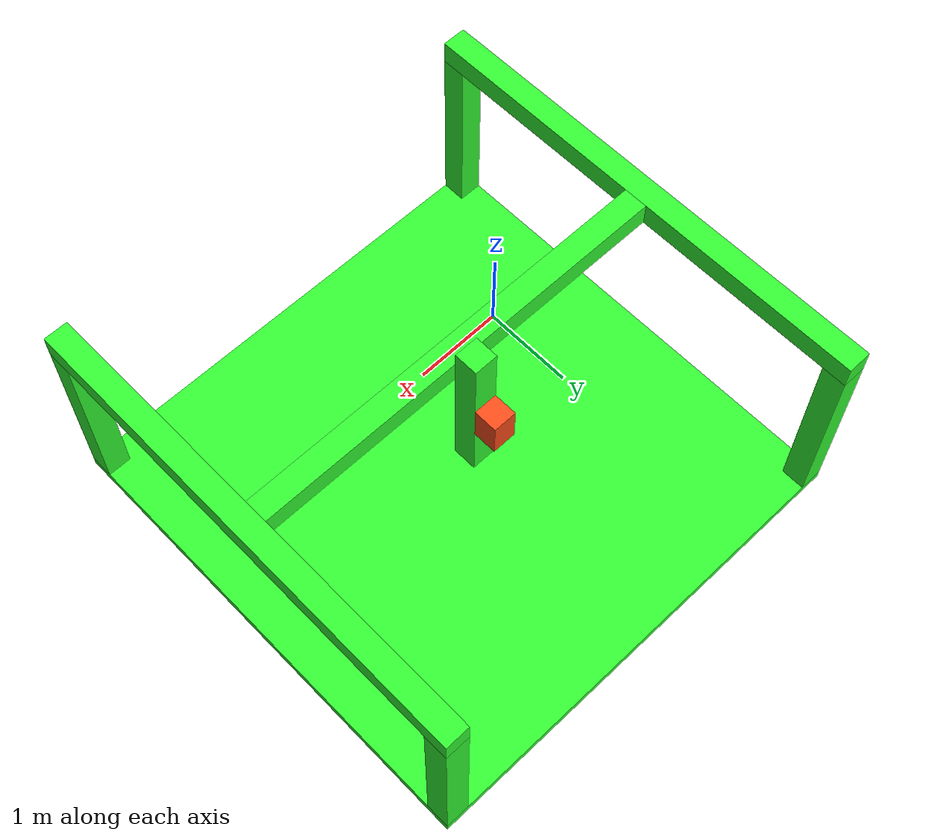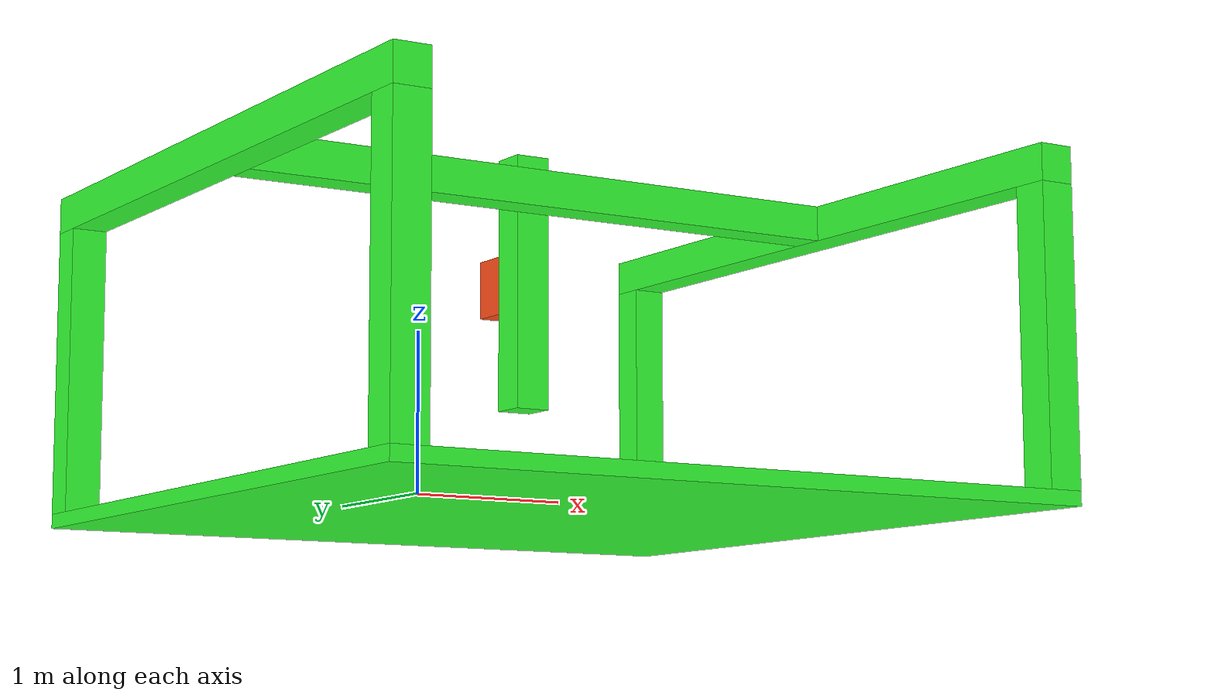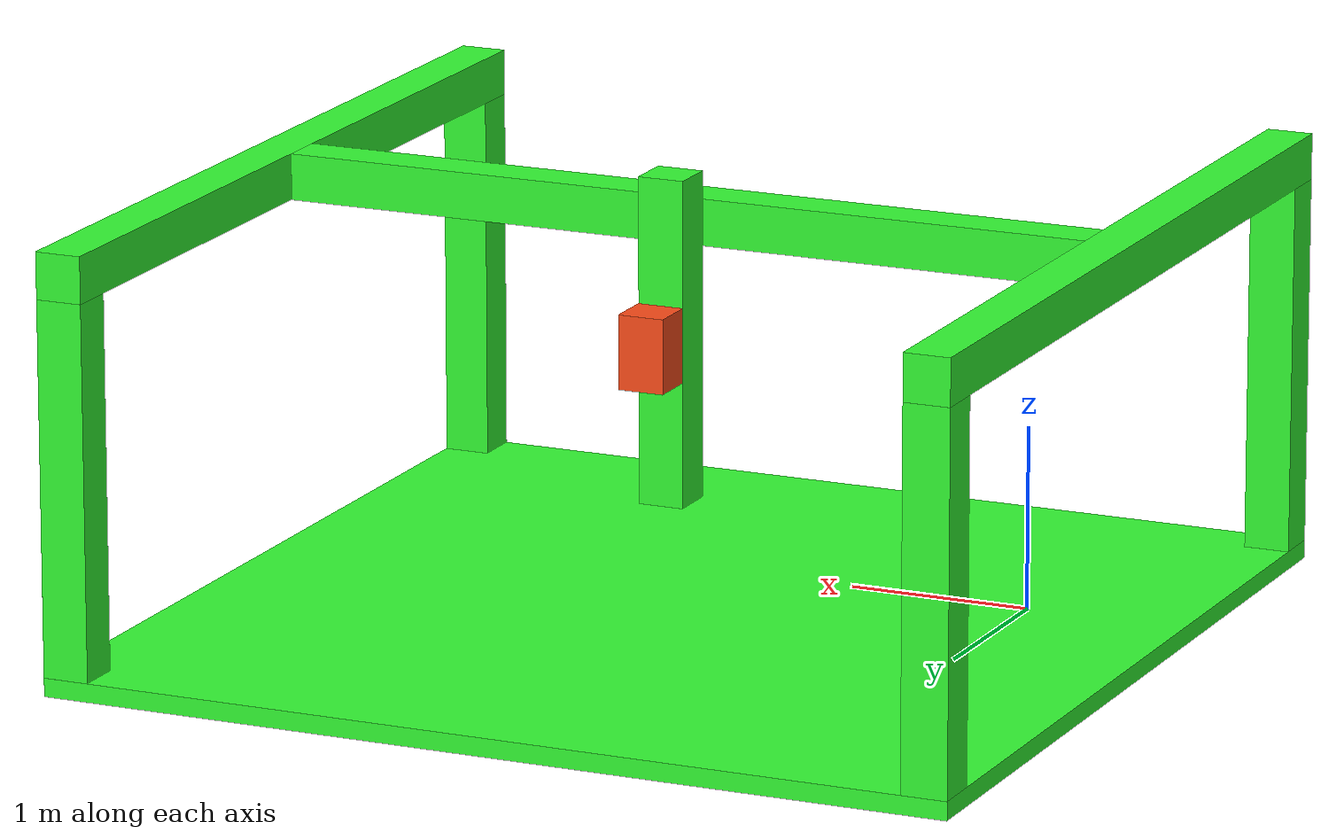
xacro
<?xml version="1.0"?>
<robot xmlns:xacro="http://www.ros.org/wiki/xacro" name="GantBot">
    <xacro:include filename="example_include.xacro" />
    <xacro:include filename="example_gazebo.xacro" />
    <link name="world"></link>
    <joint name="base_joint" type="fixed">
        <origin xyz="1.5 1.0 0" rpy="0 0 0"/>
        <parent link="world"/>
        <child link="base_link"/>
        <dynamics damping="1000000" friction="10000000"/>
    </joint>
    <link name="base_link">
        <visual>
            <origin xyz="0 0 0.05" rpy="0 0 0"/>
            <geometry>
                <box size="5 5 0.1" />
            </geometry>
            <material name="green">
                <color rgba="0.2 1 0.2 1"/>
            </material>
        </visual>
        <collision>
            <origin xyz="0 0 0.05" rpy="0 0 0"/>
            <geometry>
                <box size="5 5 0.1" />
            </geometry>
        </collision>
        <xacro:inertial_box mass="10" x="5" y="5" z="0.1">
            <origin xyz="0 0 0.05" rpy="0 0 0"/>
        </xacro:inertial_box>
    </link>

    <joint name="pilar1_joint" type="fixed">
        <origin xyz="2.375 2.375 0.1" rpy="0 0 0"/>
        <parent link="base_link"/>
        <child link="pilar1_link"/>
        <dynamics damping="1000000" friction="10000000"/>
    </joint>

    <link name="pilar1_link">
        <visual>
            <origin xyz="0 0 1" rpy="0 0 0"/>
            <geometry>
                <box size="0.25 0.25 2" />
            </geometry>
            <material name="green">
                <color rgba="0.2 1 0.2 1"/>
            </material>
        </visual>
        <collision>
            <origin xyz="0 0 1" rpy="0 0 0"/>
            <geometry>
                <box size="0.25 0.25 2" />
            </geometry>
        </collision>
        <xacro:inertial_box mass="2" x="0.5" y="0.25" z="0.15">
            <origin xyz="0 0 1" rpy="0 0 0"/>
        </xacro:inertial_box>
    </link>

    <joint name="pilar2_joint" type="fixed">
        <origin xyz="-2.375 2.375 0.1" rpy="0 0 0"/>
        <parent link="base_link"/>
        <child link="pilar2_link"/>
        <dynamics damping="1000000" friction="10000000"/>
    </joint>

    <link name="pilar2_link">
        <visual>
            <origin xyz="0 0 1" rpy="0 0 0"/>
            <geometry>
                <box size="0.25 0.25 2" />
            </geometry>
            <material name="green">
                <color rgba="0.2 1 0.2 1"/>
            </material>
        </visual>
        <collision>
            <origin xyz="0 0 1" rpy="0 0 0"/>
            <geometry>
                <box size="0.25 0.25 2" />
            </geometry>
        </collision>
        <xacro:inertial_box mass="2" x="0.5" y="0.25" z="0.15">
            <origin xyz="0 0 1" rpy="0 0 0"/>
        </xacro:inertial_box>
    </link>

     <joint name="pilar3_joint" type="fixed">
        <origin xyz="2.375 -2.375 0.1" rpy="0 0 0"/>
        <parent link="base_link"/>
        <child link="pilar3_link"/>
        <dynamics damping="1000000" friction="10000000"/>
    </joint>

    <link name="pilar3_link">
        <visual>
            <origin xyz="0 0 1" rpy="0 0 0"/>
            <geometry>
                <box size="0.25 0.25 2" />
            </geometry>
            <material name="green">
                <color rgba="0.2 1 0.2 1"/>
            </material>
        </visual>
        <collision>
            <origin xyz="0 0 1" rpy="0 0 0"/>
            <geometry>
                <box size="0.25 0.25 2" />
            </geometry>
        </collision>
        <xacro:inertial_box mass="2" x="0.5" y="0.25" z="0.15">
            <origin xyz="0 0 1" rpy="0 0 0"/>
        </xacro:inertial_box>
    </link>

    <joint name="pilar4_joint" type="fixed">
        <origin xyz="-2.375 -2.375 0.1" rpy="0 0 0"/>
        <parent link="base_link"/>
        <child link="pilar4_link"/>
        <dynamics damping="1000000" friction="10000000"/>
    </joint>

    <link name="pilar4_link">
        <visual>
            <origin xyz="0 0 1" rpy="0 0 0"/>
            <geometry>
                <box size="0.25 0.25 2" />
            </geometry>
            <material name="green">
                <color rgba="0.2 1 0.2 1"/>
            </material>
        </visual>
        <collision>
            <origin xyz="0 0 1" rpy="0 0 0"/>
            <geometry>
                <box size="0.25 0.25 2" />
            </geometry>
        </collision>
        <xacro:inertial_box mass="2" x="0.5" y="0.25" z="0.15">
            <origin xyz="0 0 1" rpy="0 0 0"/>
        </xacro:inertial_box>
    </link>

    <joint name="edge1_joint" type="fixed">
        <origin xyz="0 -2.375 2.125" rpy="0 0 0"/>
        <parent link="pilar1_link"/>
        <child link="edge1_link"/>
        <dynamics damping="1000000" friction="10000000"/>
    </joint>

    <link name="edge1_link">
        <visual>
            <origin xyz="0 0 0" rpy="0 0 0"/>
            <geometry>
                <box size="0.25 5 0.25" />
            </geometry>
            <material name="green">
                <color rgba="0.2 1 0.2 1"/>
            </material>
        </visual>
        <collision>
            <origin xyz="0 0 0" rpy="0 0 0"/>
            <geometry>
                <box size="0.25 5 0.25" />
            </geometry>
        </collision>
        <xacro:inertial_box mass="1" x="0.5" y="0.25" z="0.15">
            <origin xyz="0 0 0.075" rpy="0 0 0"/>
        </xacro:inertial_box>
    </link>

     <joint name="edge2_joint" type="fixed">
        <origin xyz="0 -2.375 2.125" rpy="0 0 0"/>
        <parent link="pilar2_link"/>
        <child link="edge2_link"/>
        <dynamics damping="1000000" friction="10000000"/>
    </joint>

    <link name="edge2_link">
        <visual>
            <origin xyz="0 0 0" rpy="0 0 0"/>
            <geometry>
                <box size="0.25 5 0.25" />
            </geometry>
            <material name="green">
                <color rgba="0.2 1 0.2 1"/>
            </material>
        </visual>
        <collision>
            <origin xyz="0 0 0" rpy="0 0 0"/>
            <geometry>
                <box size="0.25 5 0.25" />
            </geometry>
        </collision>
        <xacro:inertial_box mass="1" x="0.5" y="0.25" z="0.15">
            <origin xyz="0 0 0" rpy="0 0 0"/>
        </xacro:inertial_box>
    </link>

    <joint name="y_joint" type="prismatic">
        <origin xyz="0.125 0 0" rpy="0 0 0"/>
        <parent link="edge2_link"/>
        <child link="y_link"/>
        <axis xyz="0 1 0"/>
        <dynamics damping="5.0" friction="1.0"/>
        <limit lower="-2.25" upper="2.25" velocity="1" effort="100"/>
    </joint>

    <link name="y_link">
        <visual>
            <origin xyz="2.25 0 0" rpy="0 0 0"/>
            <geometry>
                <box size="4.5 0.25 0.25" />
            </geometry>
            <material name="blue">
                <color rgba="0.2 1 0.2 1"/>
            </material>
        </visual>
        <collision>
            <origin xyz="2.25 0 0" rpy="0 0 0"/>
            <geometry>
                <box size="4.5 0.25 0.25" />
            </geometry>
        </collision>
        <xacro:inertial_box mass="0.5" x="0.5" y="0.25" z="0.15">
            <origin xyz="2.25 0 0" rpy="0 0 0"/>
        </xacro:inertial_box>
    </link>

    <joint name="x_joint" type="prismatic">
        <origin xyz="2.25 0.25 0" rpy="0 0 0"/>
        <parent link="y_link"/>
        <child link="x_link"/>
        <axis xyz="1 0 0"/>
        <dynamics damping="5.0" friction="1.0"/>
        <limit lower="-2.1" upper="2.1" velocity="1" effort="100"/>
    </joint>

    <link name="x_link">
        <visual>
            <origin xyz="0 0 -0.6" rpy="0 0 0"/>
            <geometry>
                <box size="0.25 0.25 1.75" />
            </geometry>
            <material name="blue">
                <color rgba="0.2 1 0.2 1"/>
            </material>
        </visual>
        <collision>
            <origin xyz="0 0 -0.6" rpy="0 0 0"/>
            <geometry>
                <box size="0.25 0.25 1.75" />
            </geometry>
        </collision>
        <xacro:inertial_box mass="0.5" x="0.5" y="0.25" z="0.15">
            <origin xyz="0 0 -0.6" rpy="0 0 0"/>
        </xacro:inertial_box>
    </link>

    <joint name="z_joint" type="prismatic">
        <origin xyz="0 0.25 0" rpy="0 0 0"/>
        <parent link="x_link"/>
        <child link="z_link"/>
        <axis xyz="0 0 1"/>
        <dynamics damping="5.0" friction="1.0"/>
        <limit lower="-1" upper="0.2" velocity="1" effort="100"/>
    </joint>

    <link name="z_link">
        <visual>
            <origin xyz="0 0 -0.6" rpy="0 0 0"/>
            <geometry>
                <box size="0.25 0.25 0.4" />
            </geometry>
            <material name="orange"/>
        </visual>
        <collision>
            <origin xyz="0 0 -0.6" rpy="0 0 0"/>
            <geometry>
                <box size="0.25 0.25 0.4"/>
            </geometry>
        </collision>
        <xacro:inertial_box mass="0.2" x="0.5" y="0.25" z="0.15">
            <origin xyz="0 0 -0.6" rpy="0 0 0"/>
        </xacro:inertial_box>
    </link>

</robot>

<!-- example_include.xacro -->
<robot xmlns:xacro="http://www.ros.org/wiki/xacro" name="GantBot">
    <material name="white">
        <color rgba="1 1 1 1"/>
    </material>
    <material name="orange">
        <color rgba="1 0.3 0.1 1"/>
    </material>
    <material name="blue">
        <color rgba="0.2 0.2 1 1"/>
    </material>
    <xacro:macro name="inertial_sphere" params="mass radius *origin">
        <inertial>
            <xacro:insert_block name="origin"/>
            <mass value="${mass}" />
            <inertia ixx="${(2/5) * mass * (radius*radius)}" ixy="0.0" ixz="0.0"
                    iyy="${(2/5) * mass * (radius*radius)}" iyz="0.0"
                    izz="${(2/5) * mass * (radius*radius)}" />
        </inertial>
    </xacro:macro>
    <xacro:macro name="inertial_box" params="mass x y z *origin">
        <inertial>
            <xacro:insert_block name="origin"/>
            <mass value="${mass}" />
            <inertia ixx="${(1/12) * mass * (y*y+z*z)}" ixy="0.0" ixz="0.0"
                    iyy="${(1/12) * mass * (x*x+z*z)}" iyz="0.0"
                    izz="${(1/12) * mass * (x*x+y*y)}" />
        </inertial>
    </xacro:macro>
    <xacro:macro name="inertial_cylinder" params="mass length radius *origin">
        <inertial>
            <xacro:insert_block name="origin"/>
            <mass value="${mass}" />
            <inertia ixx="${(1/12) * mass * (3*radius*radius + length*length)}" ixy="0.0" ixz="0.0"
                    iyy="${(1/12) * mass * (3*radius*radius + length*length)}" iyz="0.0"
                    izz="${(1/2) * mass * (radius*radius)}" />
        </inertial>
    </xacro:macro>
</robot>
